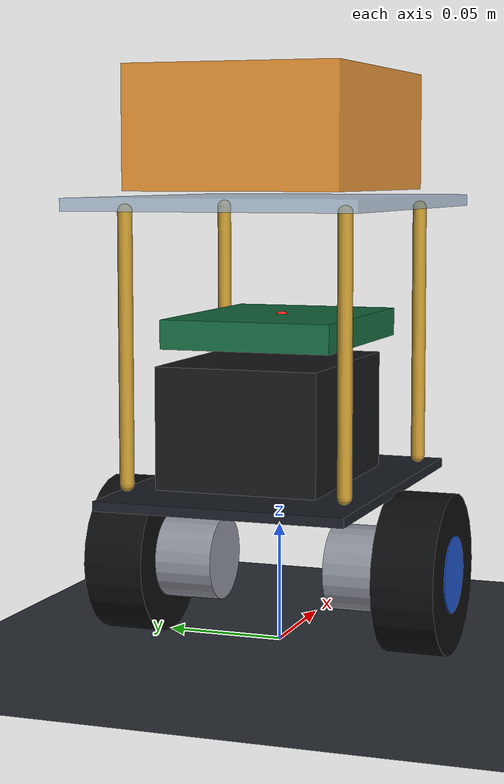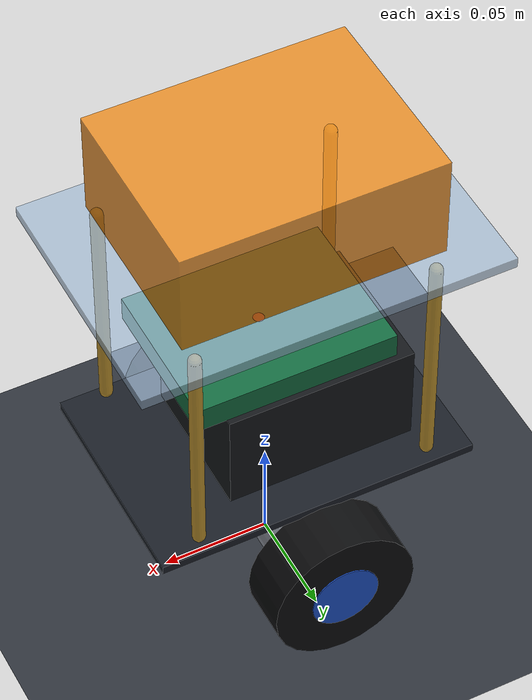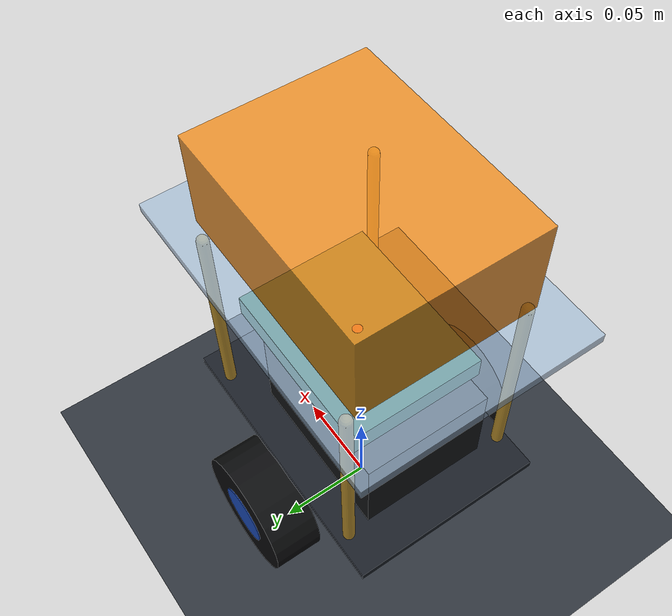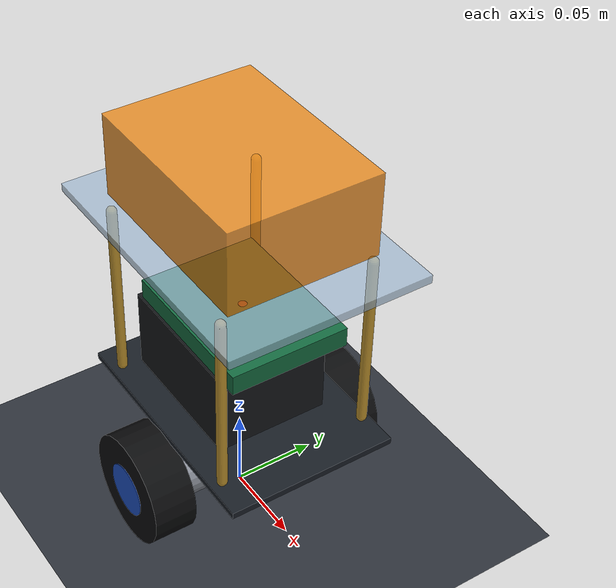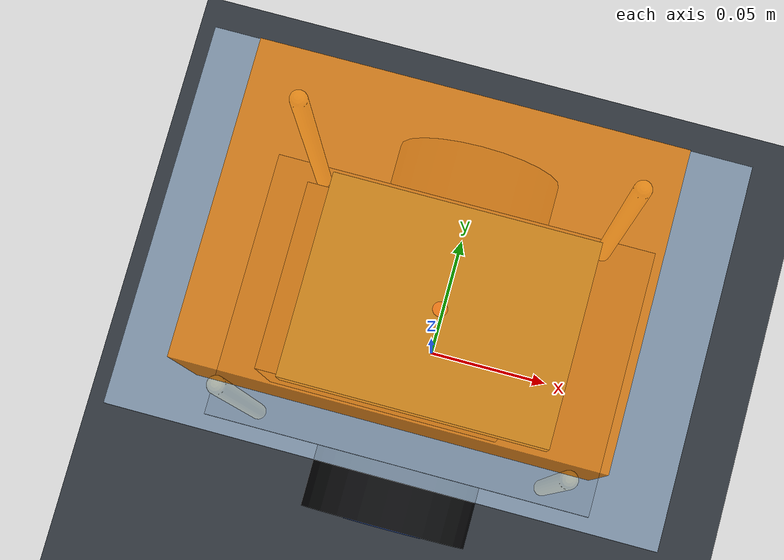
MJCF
<mujoco model="yahboom_stm32_balance_car_v2">
  <compiler angle="radian" inertiafromgeom="true" autolimits="true" />
  <option timestep="0.001" gravity="0 0 -9.81" integrator="implicitfast"
          solver="Newton" iterations="80" noslip_iterations="8"
          tolerance="1e-10" />

  <default>
    <!-- Stiff contact: the plane is fixed to worldbody and therefore immovable. -->
    <geom condim="4" friction="1.15 0.015 0.001" density="500"
          solref="0.002 1" solimp="0.995 0.9999 0.0001" />
    <joint damping="0.003" armature="0.00020" frictionloss="0.004" />
    <!-- ctrl is wheel torque in N m after the PWM motor model. -->
    <motor ctrllimited="true" ctrlrange="-0.52 0.52" />
  </default>

  <visual>
    <global azimuth="120" elevation="-18" />
    <headlight ambient="0.35 0.35 0.35" diffuse="0.65 0.65 0.65" />
  </visual>

  <worldbody>
    <light name="key" pos="0 -2 3" dir="0 0 -1" directional="true" />
    <!-- A worldbody plane has no joint or mass and is a static rigid ground. -->
    <geom name="ground" type="plane" size="5 5 0.05"
          rgba="0.18 0.20 0.23 1" friction="1.15 0.015 0.001" />

    <!-- The chassis frame origin is the wheel axle midpoint. -->
    <body name="chassis" pos="0 0 0.0335">
      <freejoint name="root" />

      <!-- Simplified standard chassis: about 1.01 kg without payload. -->
      <geom name="lower_plate" type="box" pos="0 0 0.034"
            size="0.075 0.052 0.002" mass="0.18"
            rgba="0.10 0.12 0.15 1" contype="0" conaffinity="0" />
      <geom name="battery_pack" type="box" pos="-0.010 0 0.063"
            size="0.044 0.034 0.025" mass="0.18"
            rgba="0.08 0.09 0.10 1" contype="0" conaffinity="0" />
      <geom name="controller_board" type="box" pos="0.003 0 0.100"
            size="0.047 0.036 0.006" mass="0.12"
            rgba="0.08 0.42 0.25 1" contype="0" conaffinity="0" />
      <geom name="left_standoff" type="capsule" fromto="-0.055 0.046 0.040 -0.055 0.046 0.150"
            size="0.003" mass="0.0125" rgba="0.75 0.58 0.18 1"
            contype="0" conaffinity="0" />
      <geom name="right_standoff" type="capsule" fromto="-0.055 -0.046 0.040 -0.055 -0.046 0.150"
            size="0.003" mass="0.0125" rgba="0.75 0.58 0.18 1"
            contype="0" conaffinity="0" />
      <geom name="front_left_standoff" type="capsule" fromto="0.055 0.046 0.040 0.055 0.046 0.150"
            size="0.003" mass="0.0125" rgba="0.75 0.58 0.18 1"
            contype="0" conaffinity="0" />
      <geom name="front_right_standoff" type="capsule" fromto="0.055 -0.046 0.040 0.055 -0.046 0.150"
            size="0.003" mass="0.0125" rgba="0.75 0.58 0.18 1"
            contype="0" conaffinity="0" />
      <geom name="top_platform" type="box" pos="0 0 0.153"
            size="0.085 0.060 0.0025" mass="0.06"
            rgba="0.63 0.73 0.83 0.72" contype="0" conaffinity="0" />

      <site name="imu" pos="0.003 0 0.103" size="0.004"
            rgba="1 0.15 0.10 1" />

      <!-- Adjustable load is fixed to the upper platform. -->
      <body name="payload" pos="0 0 0.158">
        <geom name="payload_box" type="box" pos="0 0 0.025"
              size="0.060 0.045 0.025" mass="0.000001"
              rgba="0.93 0.55 0.12 0.85" contype="0" conaffinity="0" />
      </body>

      <!-- 520 geared motors, 150 g each. -->
      <geom name="left_motor_case" type="cylinder" pos="0 0.047 0"
            size="0.018 0.022" euler="1.57079632679 0 0" mass="0.15"
            rgba="0.55 0.57 0.61 1" contype="0" conaffinity="0" />
      <geom name="right_motor_case" type="cylinder" pos="0 -0.047 0"
            size="0.018 0.022" euler="1.57079632679 0 0" mass="0.15"
            rgba="0.55 0.57 0.61 1" contype="0" conaffinity="0" />

      <body name="left_wheel" pos="0 0.063 0">
        <joint name="left_wheel_hinge" type="hinge" axis="0 1 0" />
        <geom name="left_tire" type="cylinder" size="0.0335 0.013"
              euler="1.57079632679 0 0" mass="0.05"
              rgba="0.045 0.047 0.052 1" />
        <geom name="left_hub" type="cylinder" size="0.016 0.0135"
              euler="1.57079632679 0 0" mass="0.01"
              rgba="0.12 0.32 0.78 1" contype="0" conaffinity="0" />
      </body>

      <body name="right_wheel" pos="0 -0.063 0">
        <joint name="right_wheel_hinge" type="hinge" axis="0 1 0" />
        <geom name="right_tire" type="cylinder" size="0.0335 0.013"
              euler="1.57079632679 0 0" mass="0.05"
              rgba="0.045 0.047 0.052 1" />
        <geom name="right_hub" type="cylinder" size="0.016 0.0135"
              euler="1.57079632679 0 0" mass="0.01"
              rgba="0.12 0.32 0.78 1" contype="0" conaffinity="0" />
      </body>
    </body>
  </worldbody>

  <actuator>
    <motor name="left_motor" joint="left_wheel_hinge" gear="1" />
    <motor name="right_motor" joint="right_wheel_hinge" gear="1" />
  </actuator>

  <sensor>
    <framequat name="chassis_orientation" objtype="body" objname="chassis" />
    <gyro name="chassis_gyro" site="imu" />
    <accelerometer name="imu_acceleration" site="imu" />
    <velocimeter name="chassis_velocity" site="imu" />
  </sensor>
</mujoco>
